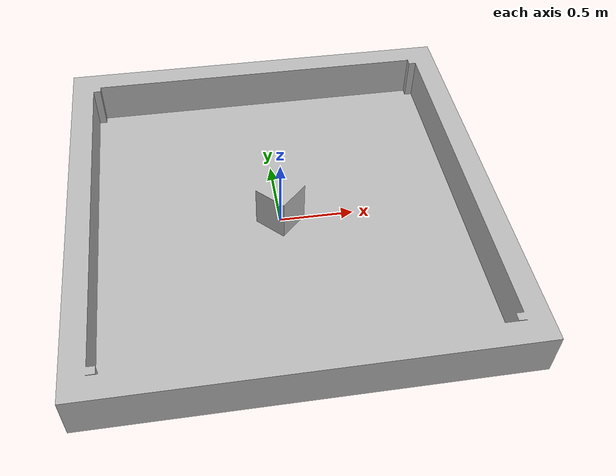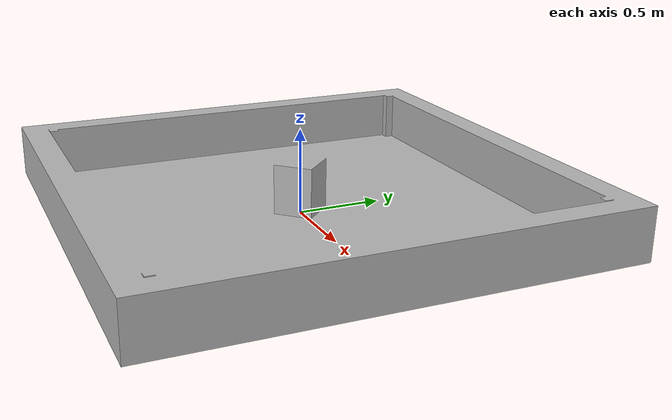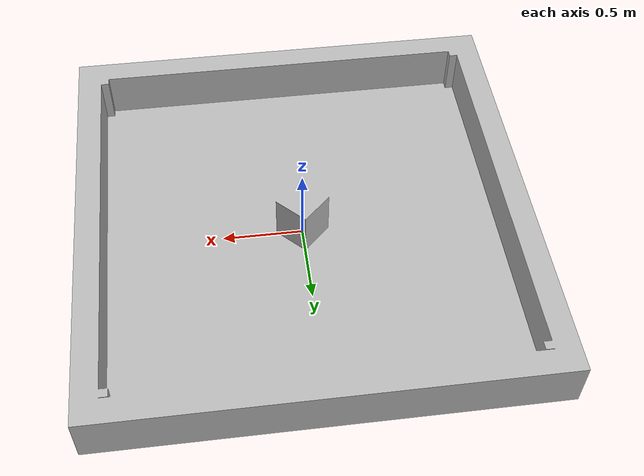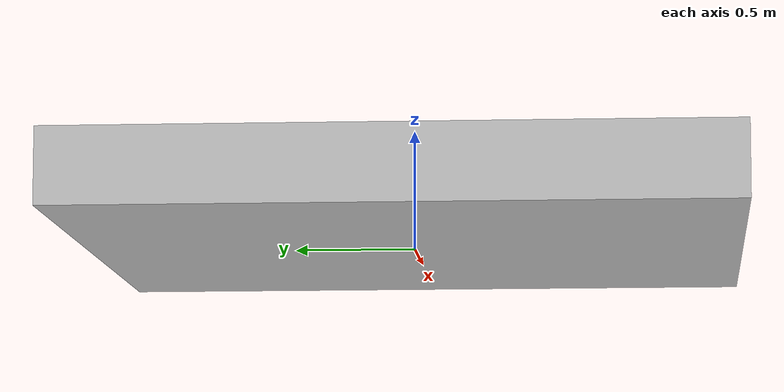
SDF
<?xml version='1.0'?>
<sdf version='1.6'>
    <model name='arena'>
      <pose>0 0 0 0 0 0</pose>
      <static>1</static>
      <link name='link'>
        <gravity>0</gravity>
        <collision name='collision'>
          <geometry>
            <mesh>
              <uri>model://arena/meshes/walls.stl</uri>
            </mesh>
          </geometry>
          <max_contacts>10</max_contacts>
          <surface>
            <friction>
              <ode>
                <mu>50.000000</mu>
                <mu2>50.000000</mu2>
                <fdir1>0.000000 0.000000 0.000000</fdir1>
                <slip1>0.000000</slip1>
                <slip2>0.000000</slip2>
              </ode>
            </friction>
            <bounce>
              <restitution_coefficient>0.000000</restitution_coefficient>
              <threshold>100000.000000</threshold>
            </bounce>
            <contact>
              <ode>
                <soft_cfm>0.000000</soft_cfm>
                <soft_erp>0.200000</soft_erp>
                <kp>1000000000.000000</kp>
                <kd>1.000000</kd>
                <max_vel>100.000000</max_vel>
                <min_depth>0.001000</min_depth>
              </ode>
            </contact>
          </surface>
        </collision>
        <visual name='visual'>
          <geometry>
            <mesh>
              <uri>model://arena/meshes/arena.dae</uri>
            </mesh>
          </geometry>
        </visual>
        <self_collide>0</self_collide>
        <enable_wind>0</enable_wind>
        <kinematic>0</kinematic>
      </link>
      <link name='floor'>
        <pose>0 0 0.0147625 0 0 0</pose>
        <gravity>0</gravity>
        <collision name='collision'>
          <geometry>
            <plane>
              <normal>0 0 1</normal>
              <size>10 10</size>
            </plane>
          </geometry>
          <max_contacts>10</max_contacts>
          <surface>
            <friction>
              <ode>
                <mu>50.000000</mu>
                <mu2>50.000000</mu2>
                <fdir1>0.000000 0.000000 0.000000</fdir1>
                <slip1>0.000000</slip1>
                <slip2>0.000000</slip2>
              </ode>
            </friction>
            <bounce>
              <restitution_coefficient>0.000000</restitution_coefficient>
              <threshold>100000.000000</threshold>
            </bounce>
            <contact>
              <ode>
                <soft_cfm>0.000000</soft_cfm>
                <soft_erp>0.200000</soft_erp>
                <kp>1000000000.000000</kp>
                <kd>1.000000</kd>
                <max_vel>100.000000</max_vel>
                <min_depth>0.001000</min_depth>
              </ode>
            </contact>
          </surface>
        </collision>
       </link>
      <static>1</static>
      <allow_auto_disable>1</allow_auto_disable>
    </model>
</sdf>
